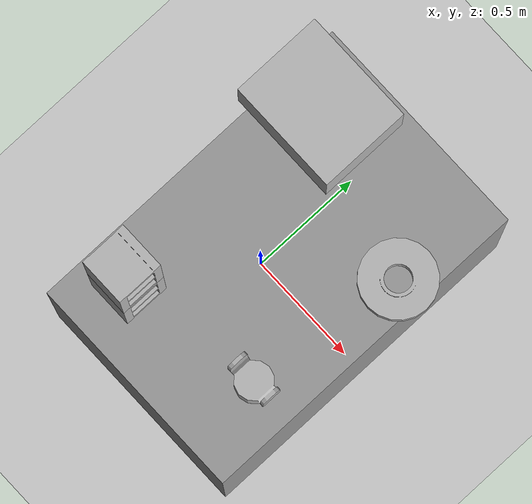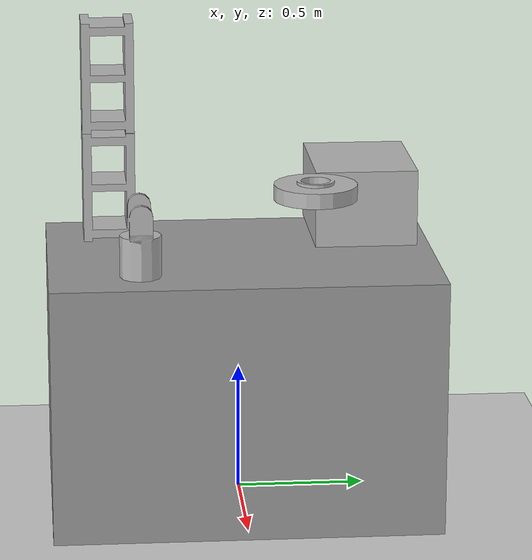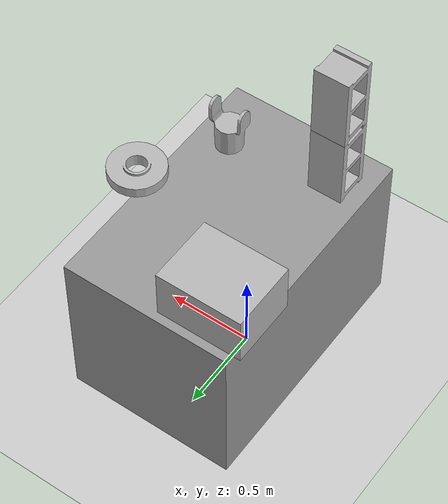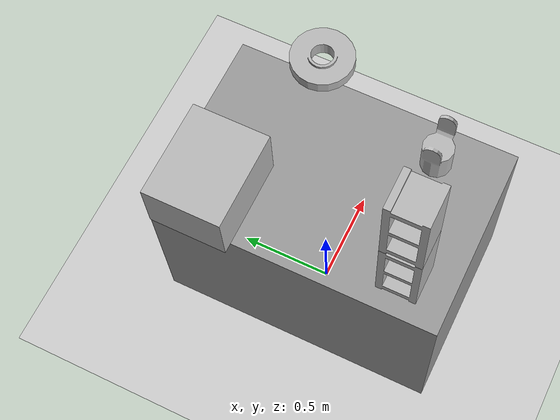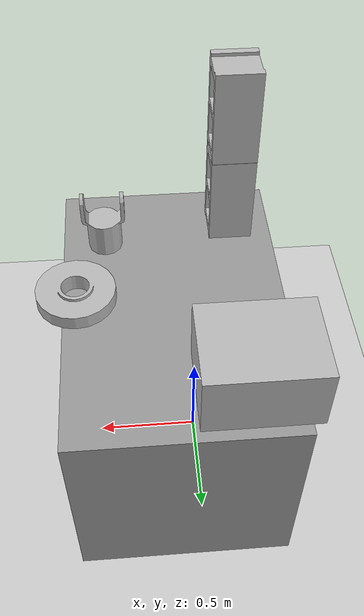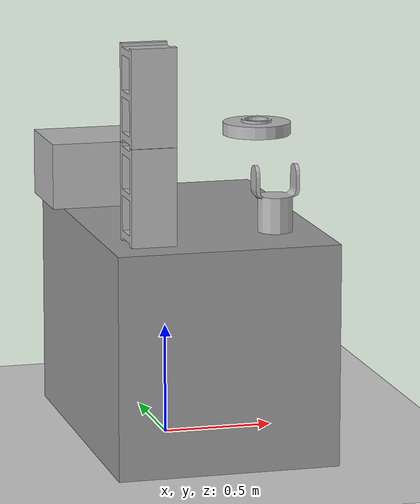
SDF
<?xml version="1.0" ?>
<sdf version="1.4">
  <world name="default">
    <include>
      <uri>model://ground_plane</uri>
    </include>
    <include>
      <uri>model://sun</uri>
    </include>

    <model name='demo_stage'>
      <pose>0.1 0 0.5 0 0 0</pose>
      <link name='link'>
        <inertial>
          <mass>1</mass>
          <inertia>
            <ixx>1</ixx>
            <ixy>0</ixy>
            <ixz>0</ixz>
            <iyy>1</iyy>
            <iyz>0</iyz>
            <izz>1</izz>
          </inertia>
        </inertial>
        <collision name='collision'>
          <geometry>
            <box>
              <size>1 1.5 1</size>
            </box>
          </geometry>
          <max_contacts>10</max_contacts>
          <surface>
            <bounce/>
            <friction>
              <ode/>
            </friction>
            <contact>
              <ode/>
            </contact>
          </surface>
        </collision>
        <visual name='visual'>
          <geometry>
            <box>
              <size>1 1.5 1</size>
            </box>
          </geometry>
          <material>
            <script>
              <uri>file://media/materials/scripts/gazebo.material</uri>
              <name>Gazebo/Grey</name>
            </script>
          </material>
        </visual>
        <velocity_decay>
          <linear>0</linear>
          <angular>0</angular>
        </velocity_decay>
        <self_collide>0</self_collide>
        <kinematic>0</kinematic>
        <gravity>1</gravity>
      </link>
      <static>1</static>
    </model>

    <model name='coke_can_0'>
      <link name='link'>
        <inertial>
          <pose>-0.01 -0.012 0.15 0 0 0</pose>
          <mass>0.39</mass>
          <inertia>
            <ixx>0.00058</ixx>
            <ixy>0</ixy>
            <ixz>0</ixz>
            <iyy>0.00058</iyy>
            <iyz>0</iyz>
            <izz>0.00019</izz>
          </inertia>
        </inertial>
        <collision name='collision'>
          <pose>0 0 -0.46 0 0 0</pose>
          <geometry>
            <mesh>
              <uri>model://coke_can/meshes/coke_can.dae</uri>
            </mesh>
          </geometry>
          <surface>
            <friction>
              <ode>
                <mu>1</mu>
                <mu2>1</mu2>
              </ode>
            </friction>
            <contact>
              <ode>
                <kp>1e+07</kp>
                <kd>1</kd>
                <min_depth>0.001</min_depth>
                <max_vel>0.1</max_vel>
              </ode>
            </contact>
            <bounce/>
          </surface>
          <max_contacts>10</max_contacts>
        </collision>
        <visual name='visual'>
          <pose>0 0 -0.46 0 0 0</pose>
          <geometry>
            <mesh>
              <uri>model://coke_can/meshes/coke_can.dae</uri>
            </mesh>
          </geometry>
        </visual>
        <velocity_decay>
          <linear>0</linear>
          <angular>0</angular>
        </velocity_decay>
        <self_collide>0</self_collide>
        <kinematic>0</kinematic>
        <gravity>1</gravity>
      </link>
      <pose>0.5 0.25 1 0 0 0</pose>
      <static>0</static>
    </model>
    <model name='disk_part_0'>
      <link name='link'>
        <inertial>
          <pose>0 0 0.02895 0 -0 0</pose>
          <mass>0.5</mass>
          <inertia>
            <ixx>0.00321218</ixx>
            <ixy>0</ixy>
            <ixz>0</ixz>
            <iyy>0.00321218</iyy>
            <iyz>0</iyz>
            <izz>0.00614499</izz>
          </inertia>
        </inertial>
        <collision name='collision'>
          <pose>0 0 0.02895 0 -0 0</pose>
          <geometry>
            <cylinder>
              <length>0.0579</length>
              <radius>0.15678</radius>
            </cylinder>
          </geometry>
          <max_contacts>10</max_contacts>
          <surface>
            <bounce/>
            <friction>
              <ode/>
            </friction>
            <contact>
              <ode/>
            </contact>
          </surface>
        </collision>
        <visual name='visual'>
          <geometry>
            <mesh>
              <uri>model://disk_part/meshes/disk.dae</uri>
            </mesh>
          </geometry>
          <material>
            <script>
              <uri>model://arm_part/materials/scripts</uri>
              <uri>model://arm_part/materials/textures</uri>
              <name>ArmPart/Diffuse</name>
            </script>
          </material>
        </visual>
        <velocity_decay>
          <linear>0</linear>
          <angular>0</angular>
        </velocity_decay>
        <self_collide>0</self_collide>
        <kinematic>0</kinematic>
        <gravity>1</gravity>
      </link>
      <pose>0.5 0.25 1.315 0 0 0</pose>
      <static>0</static>
    </model>
    <model name='u_joint_part_0'>
      <pose>0.4 -0.4 1 0 0 0</pose>
      <link name='link'>
        <inertial>
          <pose>0 0 0.08086 0 -0 0</pose>
          <mass>0.5</mass>
          <inertia>
            <ixx>0.00187559</ixx>
            <ixy>0</ixy>
            <ixz>0</ixz>
            <iyy>0.00187559</iyy>
            <iyz>0</iyz>
            <izz>0.00157173</izz>
          </inertia>
        </inertial>
        <collision name='collision1'>
          <pose>0 0 0.08086 0 -0 0</pose>
          <geometry>
            <cylinder>
              <radius>0.07929</radius>
              <length>0.16172</length>
            </cylinder>
          </geometry>
          <max_contacts>10</max_contacts>
          <surface>
            <bounce/>
            <friction>
              <ode/>
            </friction>
            <contact>
              <ode/>
            </contact>
          </surface>
        </collision>
        <collision name='collision2'>
          <pose>-0.09124 0 0.22804 0 -0 0</pose>
          <geometry>
            <box>
              <size>0.01716 0.08862 0.13878</size>
            </box>
          </geometry>
          <max_contacts>10</max_contacts>
          <surface>
            <bounce/>
            <friction>
              <ode/>
            </friction>
            <contact>
              <ode/>
            </contact>
          </surface>
        </collision>
        <collision name='collision3'>
          <pose>0.09124 0 0.22804 0 -0 0</pose>
          <geometry>
            <box>
              <size>0.01716 0.08862 0.13878</size>
            </box>
          </geometry>
          <max_contacts>10</max_contacts>
          <surface>
            <bounce/>
            <friction>
              <ode/>
            </friction>
            <contact>
              <ode/>
            </contact>
          </surface>
        </collision>
        <visual name='visual'>
          <geometry>
            <mesh>
              <uri>model://u_joint_part/meshes/u_joint.dae</uri>
            </mesh>
          </geometry>
          <material>
            <script>
              <uri>model://arm_part/materials/scripts</uri>
              <uri>model://arm_part/materials/textures</uri>
              <name>ArmPart/Diffuse</name>
            </script>
          </material>
        </visual>
        <velocity_decay>
          <linear>0</linear>
          <angular>0</angular>
        </velocity_decay>
        <self_collide>0</self_collide>
        <kinematic>0</kinematic>
        <gravity>1</gravity>
      </link>
      <static>0</static>
    </model>
    <model name='cardboard_box_0'>
      <pose>-0.2 0.5 1.15 0 0 0</pose>
      <link name='link'>
        <inertial>
          <mass>2</mass>
          <inertia>
            <ixx>0.0416667</ixx>
            <ixy>0</ixy>
            <ixz>0</ixz>
            <iyy>0.0566667</iyy>
            <iyz>0</iyz>
            <izz>0.0683333</izz>
          </inertia>
        </inertial>
        <collision name='collision'>
          <geometry>
            <box>
              <size>0.5 0.4 0.3</size>
            </box>
          </geometry>
          <surface>
            <friction>
              <ode>
                <mu>1</mu>
                <mu2>1</mu2>
              </ode>
            </friction>
            <contact>
              <ode>
                <kp>1e+07</kp>
                <kd>1</kd>
                <min_depth>0.001</min_depth>
                <max_vel>0.1</max_vel>
              </ode>
            </contact>
            <bounce/>
          </surface>
          <max_contacts>10</max_contacts>
        </collision>
        <visual name='visual'>
          <pose>0 0 -0.15 0 -0 0</pose>
          <geometry>
            <mesh>
              <uri>model://cardboard_box/meshes/cardboard_box.dae</uri>
              <scale>1.25932 1.00746 0.755591</scale>
            </mesh>
          </geometry>
        </visual>
        <velocity_decay>
          <linear>0</linear>
          <angular>0</angular>
        </velocity_decay>
        <self_collide>0</self_collide>
        <kinematic>0</kinematic>
        <gravity>1</gravity>
      </link>
      <static>0</static>
    </model>
    <model name='cinder_block_0'>
      <link name='link'>
        <inertial>
          <pose>0 0 0.1016 0 -0 0</pose>
          <mass>5</mass>
          <inertia>
            <ixx>0.028705</ixx>
            <ixy>0</ixy>
            <iyy>0.073708</iyy>
            <ixz>0</ixz>
            <iyz>0</iyz>
            <izz>0.06908</izz>
          </inertia>
        </inertial>
        <visual name='visual'>
          <geometry>
            <mesh>
              <uri>model://cinder_block/meshes/cinder_block.dae</uri>
            </mesh>
          </geometry>
        </visual>
        <collision name='left'>
          <pose>0 -0.08465 0.1016 0 -0 0</pose>
          <geometry>
            <box>
              <size>0.43495 0.0339 0.2032</size>
            </box>
          </geometry>
          <surface>
            <contact>
              <ode>
                <max_vel>0.1</max_vel>
                <min_depth>0.001</min_depth>
              </ode>
            </contact>
            <friction>
              <ode>
                <mu>1</mu>
                <mu2>1</mu2>
              </ode>
            </friction>
            <bounce/>
          </surface>
          <max_contacts>10</max_contacts>
        </collision>
        <collision name='right'>
          <pose>0 0.08465 0.1016 0 -0 0</pose>
          <geometry>
            <box>
              <size>0.43495 0.0339 0.2032</size>
            </box>
          </geometry>
          <surface>
            <contact>
              <ode>
                <max_vel>0.1</max_vel>
                <min_depth>0.001</min_depth>
              </ode>
            </contact>
            <friction>
              <ode>
                <mu>1</mu>
                <mu2>1</mu2>
              </ode>
            </friction>
            <bounce/>
          </surface>
          <max_contacts>10</max_contacts>
        </collision>
        <collision name='front'>
          <pose>0.18625 0 0.1016 0 -0 0</pose>
          <geometry>
            <box>
              <size>0.0339 0.1354 0.203</size>
            </box>
          </geometry>
          <surface>
            <contact>
              <ode>
                <max_vel>0.1</max_vel>
                <min_depth>0.001</min_depth>
              </ode>
            </contact>
            <friction>
              <ode>
                <mu>1</mu>
                <mu2>1</mu2>
              </ode>
            </friction>
            <bounce/>
          </surface>
          <max_contacts>10</max_contacts>
        </collision>
        <collision name='middle'>
          <pose>0 0 0.1016 0 -0 0</pose>
          <geometry>
            <box>
              <size>0.0339 0.1354 0.203</size>
            </box>
          </geometry>
          <surface>
            <contact>
              <ode>
                <max_vel>0.1</max_vel>
                <min_depth>0.001</min_depth>
              </ode>
            </contact>
            <friction>
              <ode>
                <mu>1</mu>
                <mu2>1</mu2>
              </ode>
            </friction>
            <bounce/>
          </surface>
          <max_contacts>10</max_contacts>
        </collision>
        <collision name='back'>
          <pose>-0.18625 0 0.1016 0 -0 0</pose>
          <geometry>
            <box>
              <size>0.0339 0.1354 0.203</size>
            </box>
          </geometry>
          <surface>
            <contact>
              <ode>
                <max_vel>0.1</max_vel>
                <min_depth>0.001</min_depth>
              </ode>
            </contact>
            <friction>
              <ode>
                <mu>1</mu>
                <mu2>1</mu2>
              </ode>
            </friction>
            <bounce/>
          </surface>
          <max_contacts>10</max_contacts>
        </collision>
        <velocity_decay>
          <linear>0</linear>
          <angular>0</angular>
        </velocity_decay>
        <self_collide>0</self_collide>
        <kinematic>0</kinematic>
        <gravity>1</gravity>
      </link>
      <pose>-0.1 -0.5 1.218 -1.5707 -1.5707 1.5707</pose>
      <static>0</static>
    </model>
    <model name='cinder_block_1'>
      <link name='link'>
        <inertial>
          <pose>0 0 0.1016 0 -0 0</pose>
          <mass>5</mass>
          <inertia>
            <ixx>0.028705</ixx>
            <ixy>0</ixy>
            <iyy>0.073708</iyy>
            <ixz>0</ixz>
            <iyz>0</iyz>
            <izz>0.06908</izz>
          </inertia>
        </inertial>
        <visual name='visual'>
          <geometry>
            <mesh>
              <uri>model://cinder_block/meshes/cinder_block.dae</uri>
            </mesh>
          </geometry>
        </visual>
        <collision name='left'>
          <pose>0 -0.08465 0.1016 0 -0 0</pose>
          <geometry>
            <box>
              <size>0.43495 0.0339 0.2032</size>
            </box>
          </geometry>
          <surface>
            <contact>
              <ode>
                <max_vel>0.1</max_vel>
                <min_depth>0.001</min_depth>
              </ode>
            </contact>
            <friction>
              <ode>
                <mu>1</mu>
                <mu2>1</mu2>
              </ode>
            </friction>
            <bounce/>
          </surface>
          <max_contacts>10</max_contacts>
        </collision>
        <collision name='right'>
          <pose>0 0.08465 0.1016 0 -0 0</pose>
          <geometry>
            <box>
              <size>0.43495 0.0339 0.2032</size>
            </box>
          </geometry>
          <surface>
            <contact>
              <ode>
                <max_vel>0.1</max_vel>
                <min_depth>0.001</min_depth>
              </ode>
            </contact>
            <friction>
              <ode>
                <mu>1</mu>
                <mu2>1</mu2>
              </ode>
            </friction>
            <bounce/>
          </surface>
          <max_contacts>10</max_contacts>
        </collision>
        <collision name='front'>
          <pose>0.18625 0 0.1016 0 -0 0</pose>
          <geometry>
            <box>
              <size>0.0339 0.1354 0.203</size>
            </box>
          </geometry>
          <surface>
            <contact>
              <ode>
                <max_vel>0.1</max_vel>
                <min_depth>0.001</min_depth>
              </ode>
            </contact>
            <friction>
              <ode>
                <mu>1</mu>
                <mu2>1</mu2>
              </ode>
            </friction>
            <bounce/>
          </surface>
          <max_contacts>10</max_contacts>
        </collision>
        <collision name='middle'>
          <pose>0 0 0.1016 0 -0 0</pose>
          <geometry>
            <box>
              <size>0.0339 0.1354 0.203</size>
            </box>
          </geometry>
          <surface>
            <contact>
              <ode>
                <max_vel>0.1</max_vel>
                <min_depth>0.001</min_depth>
              </ode>
            </contact>
            <friction>
              <ode>
                <mu>1</mu>
                <mu2>1</mu2>
              </ode>
            </friction>
            <bounce/>
          </surface>
          <max_contacts>10</max_contacts>
        </collision>
        <collision name='back'>
          <pose>-0.18625 0 0.1016 0 -0 0</pose>
          <geometry>
            <box>
              <size>0.0339 0.1354 0.203</size>
            </box>
          </geometry>
          <surface>
            <contact>
              <ode>
                <max_vel>0.1</max_vel>
                <min_depth>0.001</min_depth>
              </ode>
            </contact>
            <friction>
              <ode>
                <mu>1</mu>
                <mu2>1</mu2>
              </ode>
            </friction>
            <bounce/>
          </surface>
          <max_contacts>10</max_contacts>
        </collision>
        <velocity_decay>
          <linear>0</linear>
          <angular>0</angular>
        </velocity_decay>
        <self_collide>0</self_collide>
        <kinematic>0</kinematic>
        <gravity>1</gravity>
      </link>
      <pose>-0.1 -0.5 1.654 -1.5707 -1.5707 1.5707</pose>
      <static>0</static>
    </model>

    <!-- Focus camera on tall pendulum -->
    <gui fullscreen='0'>
      <camera name='user_camera'>
        <pose>4.927360 -4.376610 3.740080 0.000000 0.275643 2.356190</pose>
        <view_controller>orbit</view_controller>
      </camera>
    </gui>

  </world>
</sdf>
